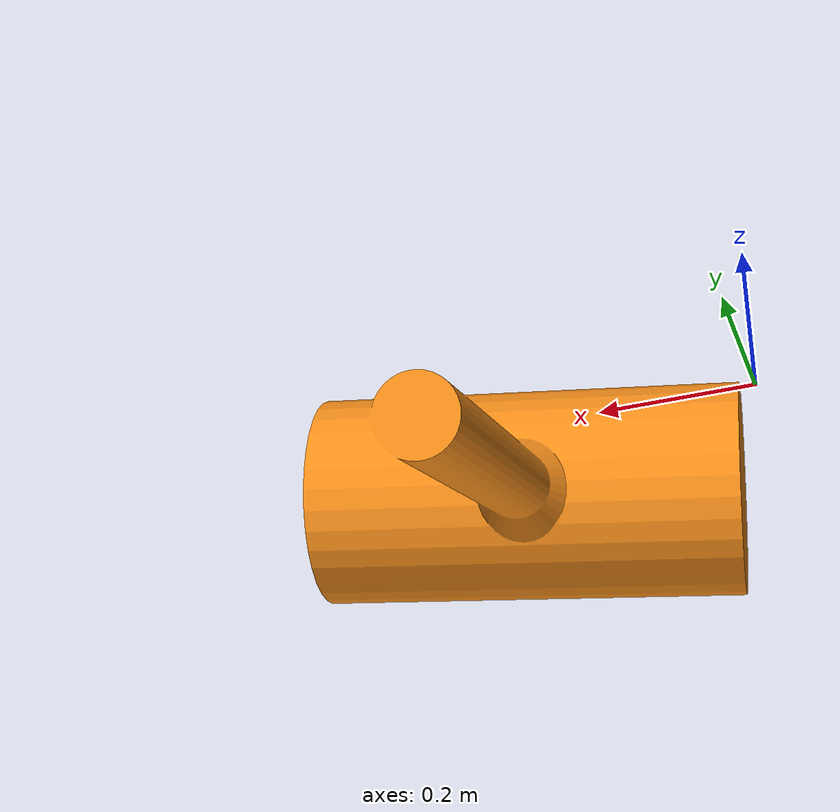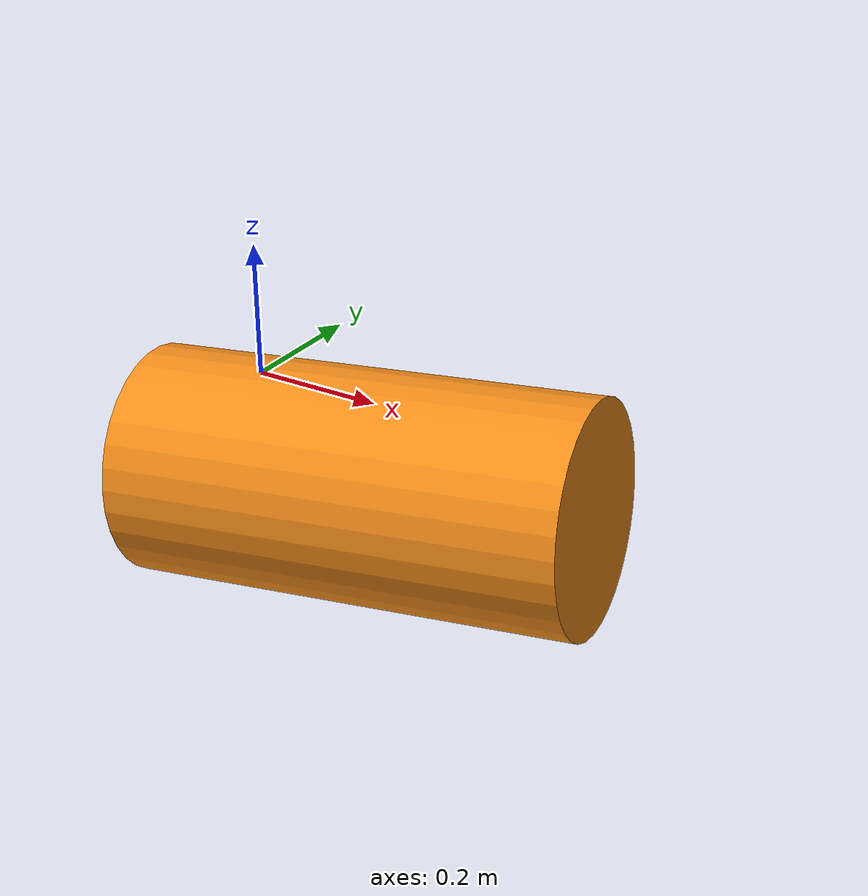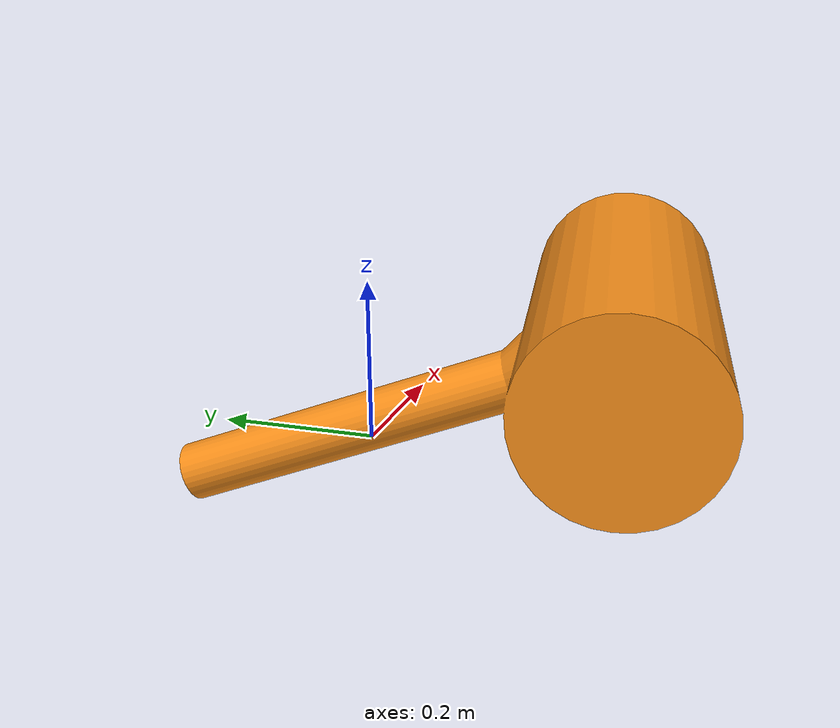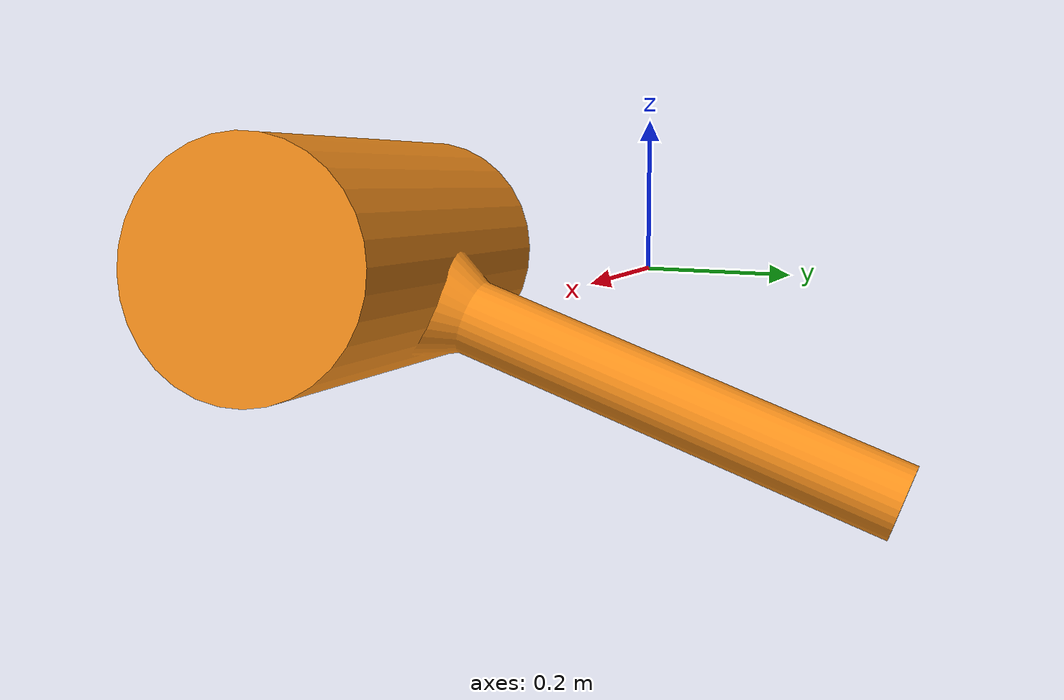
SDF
<?xml version="1.0"?>
<sdf version="1.7">
  <model name="sdrc_mallet">
    <static>true</static>
    <link name="link">
      <visual name="mallet_visual">
        <geometry>
          <mesh>
            <uri>model://sdrc_mallet/meshes/sdrc_mallet.dae</uri>
            <scale>1 1 1</scale>
          </mesh>
        </geometry>
        <material>
          <script>
            <uri>file://media/materials/scripts/gazebo.material</uri>
            <name>Gazebo/Orange</name>
          </script>
        </material>
      </visual>
      <collision name="mallet_collision">
        <geometry>
          <mesh>
            <uri>model://sdrc_mallet/meshes/sdrc_mallet.dae</uri>
            <scale>1 1 1</scale>
          </mesh>
        </geometry>
      </collision>
    </link>
  </model>
</sdf>
